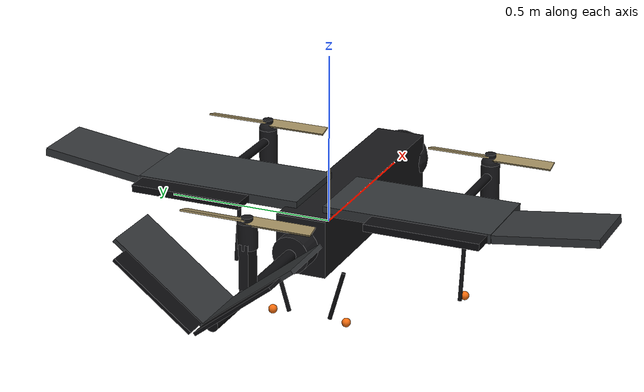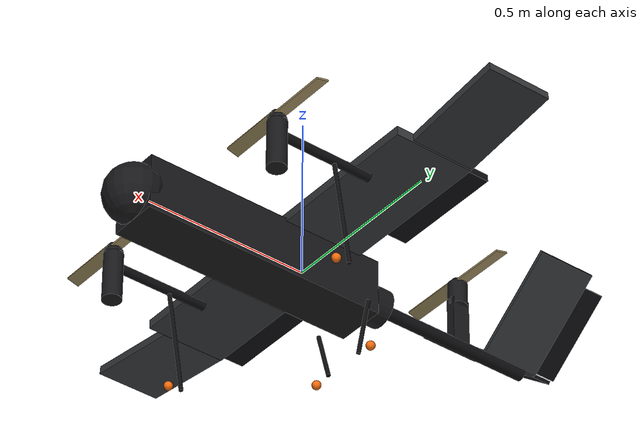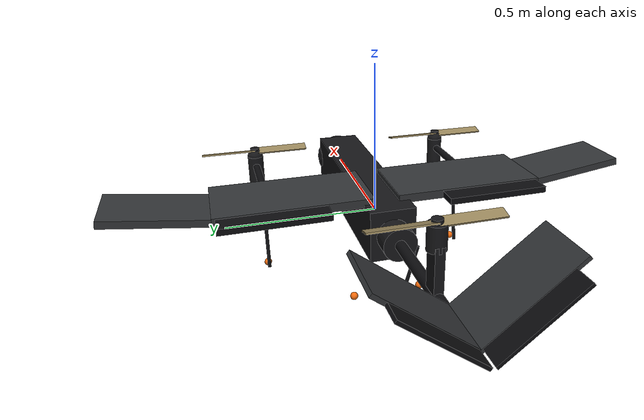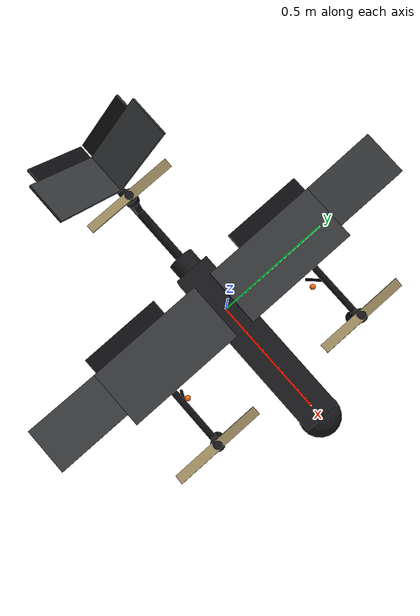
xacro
<?xml version="1.0"?>
<robot name="vtol_tiltrotor" xmlns:xacro="http://www.ros.org/wiki/xacro">

  <xacro:arg name="use_gazebo" default="true"/>
  <!-- "fortress" = ign-gazebo 6 / ROS 2 Humble, "harmonic" = gz-sim 8 / Jazzy -->
  <xacro:arg name="gz_flavor" default="fortress"/>

  <!-- ============================ PARAMETERS ============================ -->
  <!-- Fuselage pod: nose at x=+0.55, pod ends at x=-0.20 -->
  <xacro:property name="pod_len"    value="0.75"/>
  <xacro:property name="pod_w"      value="0.150"/>
  <xacro:property name="pod_h"      value="0.170"/>
  <xacro:property name="pod_x"      value="0.175"/>
  <xacro:property name="pod_mass"   value="2.60"/>     <!-- incl. battery + payload -->
  <xacro:property name="pod_cg_x"   value="0.0"/>      <!-- set below by trim -->

  <!-- Tail boom: from x=-0.20 back to x=-0.80 -->
  <xacro:property name="tb_r"       value="0.018"/>
  <xacro:property name="tb_fwd"     value="-0.20"/>
  <xacro:property name="tb_aft"     value="-0.76"/>
  <xacro:property name="tb_len"     value="${tb_fwd - tb_aft}"/>
  <xacro:property name="tb_xc"      value="${(tb_fwd + tb_aft)/2.0}"/>
  <xacro:property name="tb_mass"    value="0.15"/>

  <!-- Wing: 1.70 m span, tapered, raked tips -->
  <xacro:property name="span"       value="1.70"/>
  <xacro:property name="root_chord" value="0.265"/>
  <xacro:property name="tip_chord"  value="0.170"/>
  <xacro:property name="wing_t"     value="0.028"/>
  <xacro:property name="wing_x"     value="-0.010"/>
  <xacro:property name="wing_z"     value="0.090"/>
  <xacro:property name="panel_span" value="0.50"/>     <!-- inboard panel, per side -->
  <xacro:property name="tip_span"   value="0.31"/>     <!-- outboard raked panel -->
  <xacro:property name="panel_ac_y" value="0.29"/>     <!-- inboard panel centroid -->
  <xacro:property name="dihedral"   value="0.13"/>     <!-- tip panel, ~7.5 deg -->
  <xacro:property name="panel_mass" value="0.36"/>
  <xacro:property name="tip_mass"   value="0.14"/>
  <xacro:property name="panel_area" value="0.123"/>    <!-- 0.246 chord x 0.50 -->
  <xacro:property name="tip_area"   value="0.058"/>

  <!-- Ailerons: on the outboard trailing edge of the inboard panel -->
  <xacro:property name="ail_chord"  value="0.065"/>
  <xacro:property name="ail_span"   value="0.34"/>
  <xacro:property name="ail_mass"   value="0.025"/>

  <!-- Front rotor booms -->
  <xacro:property name="boom_y"     value="0.360"/>
  <xacro:property name="boom_r"     value="0.013"/>
  <xacro:property name="tilt_x"     value="0.360"/>    <!-- tilt axis / rotor station -->
  <xacro:property name="boom_aft_x" value="0.060"/>    <!-- boom root, inside the wing -->
  <xacro:property name="boom_len"   value="${tilt_x - boom_aft_x}"/>
  <xacro:property name="boom_xc"    value="${(tilt_x + boom_aft_x)/2.0}"/>
  <xacro:property name="boom_z"     value="0.070"/>
  <xacro:property name="fboom_mass" value="0.10"/>

  <!-- V-tail -->
  <xacro:property name="vt_x"       value="-0.720"/>
  <xacro:property name="vt_z"       value="0.020"/>
  <xacro:property name="vt_span"    value="0.320"/>
  <xacro:property name="vt_chord"   value="0.180"/>
  <xacro:property name="vt_t"       value="0.012"/>
  <xacro:property name="vt_dihed"   value="0.663"/>    <!-- 38 deg -->
  <xacro:property name="vt_mass"    value="0.09"/>
  <xacro:property name="vt_area"    value="0.0576"/>
  <xacro:property name="rv_chord"   value="0.062"/>
  <xacro:property name="rv_mass"    value="0.03"/>

  <!-- Propulsion -->
  <xacro:property name="nac_len"    value="0.150"/>
  <xacro:property name="nac_r"      value="0.028"/>
  <xacro:property name="nac_mass"   value="0.30"/>
  <xacro:property name="prop_r"     value="0.190"/>    <!-- 15 in -->
  <xacro:property name="prop_t"     value="0.008"/>
  <xacro:property name="prop_mass"  value="0.025"/>
  <xacro:property name="rear_x"     value="-0.540"/>
  <xacro:property name="pylon_h"    value="0.150"/>
  <xacro:property name="pylon_mass" value="0.16"/>
  <xacro:property name="rseat_mass" value="0.22"/>

  <xacro:property name="tilt_min"   value="-0.17"/>    <!-- slight aft tilt allowed -->
  <xacro:property name="tilt_max"   value="1.5708"/>
  <xacro:property name="ytilt_max"  value="0.524"/>    <!-- rear rotor +-30 deg -->

  <!-- Landing skids -->
  <xacro:property name="skid_f_drop" value="0.310"/>
  <xacro:property name="skid_a_drop" value="0.155"/>

  <!-- ============================ MATERIALS ============================ -->
  <material name="matte_black"><color rgba="0.09 0.09 0.10 1.0"/></material>
  <material name="dark_grey">  <color rgba="0.20 0.21 0.22 1.0"/></material>
  <material name="carbon">     <color rgba="0.05 0.05 0.06 1.0"/></material>
  <material name="prop_tan">   <color rgba="0.60 0.53 0.36 1.0"/></material>
  <material name="hi_vis">     <color rgba="0.95 0.42 0.05 1.0"/></material>

  <!-- ========================= INERTIA MACROS ========================== -->
  <xacro:macro name="box_inertial" params="m x y z *origin">
    <inertial>
      <xacro:insert_block name="origin"/>
      <mass value="${m}"/>
      <inertia ixx="${m*(y*y+z*z)/12.0}" ixy="0.0" ixz="0.0"
               iyy="${m*(x*x+z*z)/12.0}" iyz="0.0"
               izz="${m*(x*x+y*y)/12.0}"/>
    </inertial>
  </xacro:macro>

  <xacro:macro name="cyl_inertial" params="m r l *origin">
    <inertial>
      <xacro:insert_block name="origin"/>
      <mass value="${m}"/>
      <inertia ixx="${m*(3*r*r+l*l)/12.0}" ixy="0.0" ixz="0.0"
               iyy="${m*(3*r*r+l*l)/12.0}" iyz="0.0"
               izz="${m*r*r/2.0}"/>
    </inertial>
  </xacro:macro>

  <xacro:macro name="disc_inertial" params="m r">
    <inertial>
      <mass value="${m}"/>
      <inertia ixx="${m*r*r/4.0}" ixy="0" ixz="0"
               iyy="${m*r*r/4.0}" iyz="0" izz="${m*r*r/2.0}"/>
    </inertial>
  </xacro:macro>

  <!-- Two-blade propeller: bar-shaped blades with real pitch, hub, and a
       full-disc collision (standard practice - keeps the sim conservative). -->
  <xacro:macro name="prop_visual" params="pitch:=0.26">
    <visual>
      <origin xyz="0 ${prop_r/2.0} 0" rpy="0 ${pitch} 0"/>
      <geometry><box size="0.038 ${prop_r} 0.005"/></geometry>
      <material name="prop_tan"/>
    </visual>
    <visual>
      <origin xyz="0 ${-prop_r/2.0} 0" rpy="0 ${-pitch} 0"/>
      <geometry><box size="0.038 ${prop_r} 0.005"/></geometry>
      <material name="prop_tan"/>
    </visual>
    <visual>
      <geometry><cylinder radius="0.016" length="0.022"/></geometry>
      <material name="matte_black"/>
    </visual>
    <collision>
      <geometry><cylinder radius="${prop_r}" length="${prop_t}"/></geometry>
    </collision>
  </xacro:macro>

  <!-- ========================= FUSELAGE + TAIL BOOM ===================== -->
  <link name="base_link">
    <!-- main pod -->
    <visual>
      <origin xyz="${pod_x} 0 0"/>
      <geometry><box size="${pod_len} ${pod_w} ${pod_h}"/></geometry>
      <material name="matte_black"/>
    </visual>
    <!-- rounded nose -->
    <visual>
      <origin xyz="${pod_x + pod_len/2.0} 0 0"/>
      <geometry><sphere radius="${pod_h/2.0}"/></geometry>
      <material name="matte_black"/>
    </visual>
    <!-- aft fairing blending pod into the boom -->
    <visual>
      <origin xyz="${tb_fwd - 0.02} 0 0" rpy="0 1.5708 0"/>
      <geometry><cylinder radius="0.055" length="0.10"/></geometry>
      <material name="matte_black"/>
    </visual>
    <!-- tail boom -->
    <visual>
      <origin xyz="${tb_xc} 0 0" rpy="0 1.5708 0"/>
      <geometry><cylinder radius="${tb_r}" length="${tb_len}"/></geometry>
      <material name="carbon"/>
    </visual>

    <collision>
      <origin xyz="${pod_x} 0 0"/>
      <geometry><box size="${pod_len} ${pod_w} ${pod_h}"/></geometry>
    </collision>
    <collision>
      <origin xyz="${tb_xc} 0 0" rpy="0 1.5708 0"/>
      <geometry><cylinder radius="${tb_r}" length="${tb_len}"/></geometry>
    </collision>

    <!-- Pod mass. The x offset is chosen so the WHOLE-AIRFRAME CoM lands on
         x=0; it represents battery + avionics packed forward in the pod. -->
    <xacro:box_inertial m="${pod_mass}" x="${pod_len}" y="${pod_w}" z="${pod_h}">
      <origin xyz="0.0759 0 0"/>
    </xacro:box_inertial>
  </link>

  <link name="tail_boom_mass">
    <xacro:cyl_inertial m="${tb_mass}" r="${tb_r}" l="${tb_len}">
      <origin xyz="0 0 0" rpy="0 1.5708 0"/>
    </xacro:cyl_inertial>
  </link>
  <joint name="tail_boom_joint" type="fixed">
    <parent link="base_link"/><child link="tail_boom_mass"/>
    <origin xyz="${tb_xc} 0 0"/>
  </joint>

  <!-- ================================ IMU =============================== -->
  <link name="imu_link">
    <inertial>
      <mass value="0.001"/>
      <inertia ixx="1e-7" ixy="0" ixz="0" iyy="1e-7" iyz="0" izz="1e-7"/>
    </inertial>
  </link>
  <joint name="imu_joint" type="fixed">
    <parent link="base_link"/><child link="imu_link"/>
    <origin xyz="0.10 0 0.01"/>
  </joint>

  <!-- ========================= DEPTH CAMERA + GPS ======================= -->
  <link name="depth_camera_link"/>
  <joint name="depth_camera_joint" type="fixed">
    <parent link="base_link"/><child link="depth_camera_link"/>
    <origin xyz="0.64 0 0" rpy="0 0 0"/>   <!-- justo delante de la esfera de la nariz -->
  </joint>

  <link name="gps_link"/>
  <joint name="gps_joint" type="fixed">
    <parent link="base_link"/><child link="gps_link"/>
    <origin xyz="0.20 0 0.10"/>            <!-- sobre el pod -->
  </joint>

  <!-- ============================== WING =============================== -->
  <xacro:macro name="wing_panel" params="side reflect">
    <link name="wing_${side}">
      <visual>
        <origin xyz="-0.004 0 0"/>
        <geometry><box size="0.246 ${panel_span} ${wing_t}"/></geometry>
        <material name="dark_grey"/>
      </visual>
      <collision>
        <origin xyz="-0.004 0 0"/>
        <geometry><box size="0.246 ${panel_span} ${wing_t}"/></geometry>
      </collision>
      <xacro:box_inertial m="${panel_mass}" x="0.246" y="${panel_span}" z="${wing_t}">
        <origin xyz="0 0 0"/>
      </xacro:box_inertial>
    </link>
    <joint name="wing_${side}_joint" type="fixed">
      <parent link="base_link"/><child link="wing_${side}"/>
      <origin xyz="${wing_x} ${reflect*panel_ac_y} ${wing_z}"/>
    </joint>

    <!-- raked outboard tip panel -->
    <link name="tip_${side}">
      <visual>
        <origin xyz="-0.01 0 0"/>
        <geometry><box size="0.195 ${tip_span} ${wing_t*0.85}"/></geometry>
        <material name="dark_grey"/>
      </visual>
      <xacro:box_inertial m="${tip_mass}" x="0.195" y="${tip_span}" z="${wing_t}">
        <origin xyz="-0.01 0 0"/>
      </xacro:box_inertial>
    </link>
    <joint name="tip_${side}_joint" type="fixed">
      <parent link="wing_${side}"/><child link="tip_${side}"/>
      <origin xyz="-0.020 ${reflect*(panel_span/2.0 + tip_span/2.0)} 0.020"
              rpy="${reflect*dihedral} 0 0"/>
    </joint>

    <!-- aileron on the outboard trailing edge of the inboard panel -->
    <link name="aileron_${side}">
      <visual>
        <origin xyz="${-ail_chord/2.0} 0 0"/>
        <geometry><box size="${ail_chord} ${ail_span} ${wing_t*0.75}"/></geometry>
        <material name="carbon"/>
      </visual>
      <xacro:box_inertial m="${ail_mass}" x="${ail_chord}" y="${ail_span}" z="${wing_t}">
        <origin xyz="${-ail_chord/2.0} 0 0"/>
      </xacro:box_inertial>
    </link>
    <joint name="aileron_${side}_joint" type="revolute">
      <parent link="wing_${side}"/><child link="aileron_${side}"/>
      <origin xyz="-0.127 ${reflect*0.07} 0"/>
      <axis xyz="0 1 0"/>
      <limit lower="-0.44" upper="0.44" effort="6.0" velocity="10.0"/>
      <dynamics damping="0.05" friction="0.01"/>
    </joint>
  </xacro:macro>

  <xacro:wing_panel side="left"  reflect="1"/>
  <xacro:wing_panel side="right" reflect="-1"/>

  <!-- ======================== V-TAIL (RUDDERVATORS) ===================== -->
  <xacro:macro name="vtail" params="side reflect">
    <link name="vtail_${side}">
      <visual>
        <origin xyz="0 ${reflect*vt_span/2.0} 0"/>
        <geometry><box size="${vt_chord} ${vt_span} ${vt_t}"/></geometry>
        <material name="dark_grey"/>
      </visual>
      <collision>
        <origin xyz="0 ${reflect*vt_span/2.0} 0"/>
        <geometry><box size="${vt_chord} ${vt_span} ${vt_t}"/></geometry>
      </collision>
      <xacro:box_inertial m="${vt_mass}" x="${vt_chord}" y="${vt_span}" z="${vt_t}">
        <origin xyz="0 ${reflect*vt_span/2.0} 0"/>
      </xacro:box_inertial>
    </link>
    <joint name="vtail_${side}_joint" type="fixed">
      <parent link="base_link"/><child link="vtail_${side}"/>
      <origin xyz="${vt_x} 0 ${vt_z}" rpy="${reflect*vt_dihed} 0 0"/>
    </joint>

    <link name="ruddervator_${side}">
      <visual>
        <origin xyz="${-rv_chord/2.0} ${reflect*vt_span*0.45} 0"/>
        <geometry><box size="${rv_chord} ${vt_span*0.85} ${vt_t*0.8}"/></geometry>
        <material name="carbon"/>
      </visual>
      <xacro:box_inertial m="${rv_mass}" x="${rv_chord}" y="${vt_span*0.85}" z="${vt_t}">
        <origin xyz="${-rv_chord/2.0} ${reflect*vt_span*0.45} 0"/>
      </xacro:box_inertial>
    </link>
    <joint name="ruddervator_${side}_joint" type="revolute">
      <parent link="vtail_${side}"/><child link="ruddervator_${side}"/>
      <origin xyz="${-vt_chord/2.0} 0 0"/>
      <axis xyz="0 1 0"/>
      <limit lower="-0.52" upper="0.52" effort="6.0" velocity="10.0"/>
      <dynamics damping="0.05" friction="0.01"/>
    </joint>
  </xacro:macro>

  <xacro:vtail side="left"  reflect="1"/>
  <xacro:vtail side="right" reflect="-1"/>

  <!-- ==================== FRONT BOOMS + TILTING ROTORS ================== -->
  <xacro:macro name="front_unit" params="side reflect">
    <link name="fboom_${side}">
      <visual>
        <origin xyz="0 0 0" rpy="0 1.5708 0"/>
        <geometry><cylinder radius="${boom_r}" length="${boom_len}"/></geometry>
        <material name="carbon"/>
      </visual>
      <collision>
        <origin xyz="0 0 0" rpy="0 1.5708 0"/>
        <geometry><cylinder radius="${boom_r}" length="${boom_len}"/></geometry>
      </collision>
      <xacro:cyl_inertial m="${fboom_mass}" r="${boom_r}" l="${boom_len}">
        <origin xyz="0 0 0" rpy="0 1.5708 0"/>
      </xacro:cyl_inertial>
    </link>
    <joint name="fboom_${side}_joint" type="fixed">
      <parent link="base_link"/><child link="fboom_${side}"/>
      <origin xyz="${boom_xc} ${reflect*boom_y} ${boom_z}"/>
    </joint>

    <!-- tilt nacelle: 0 rad = rotor axis +z (hover), pi/2 = +x (cruise) -->
    <link name="nacelle_${side}">
      <visual>
        <origin xyz="0 0 ${-nac_len/2.0 + 0.035}"/>
        <geometry><cylinder radius="${nac_r}" length="${nac_len}"/></geometry>
        <material name="matte_black"/>
      </visual>
      <visual>
        <origin xyz="0 0 0.035"/>
        <geometry><sphere radius="${nac_r}"/></geometry>
        <material name="matte_black"/>
      </visual>
      <collision>
        <origin xyz="0 0 ${-nac_len/2.0 + 0.035}"/>
        <geometry><cylinder radius="${nac_r}" length="${nac_len}"/></geometry>
      </collision>
      <xacro:cyl_inertial m="${nac_mass}" r="${nac_r}" l="${nac_len}">
        <origin xyz="0 0 ${-nac_len/2.0 + 0.035}"/>
      </xacro:cyl_inertial>
    </link>
    <joint name="tilt_${side}_joint" type="revolute">
      <parent link="fboom_${side}"/><child link="nacelle_${side}"/>
      <origin xyz="${boom_len/2.0} 0 0"/>
      <axis xyz="0 1 0"/>
      <limit lower="${tilt_min}" upper="${tilt_max}" effort="8.0" velocity="3.0"/>
      <dynamics damping="0.10" friction="0.02"/>
    </joint>

    <link name="rotor_${side}">
      <xacro:prop_visual/>
      <xacro:disc_inertial m="${prop_mass}" r="${prop_r}"/>
    </link>
    <joint name="rotor_${side}_joint" type="continuous">
      <parent link="nacelle_${side}"/><child link="rotor_${side}"/>
      <origin xyz="0 0 0.055"/>
      <axis xyz="0 0 1"/>
    </joint>

    <!-- forward landing skid hanging off the boom -->
    <link name="skid_f_${side}">
      <visual>
        <origin xyz="0 0 ${-skid_f_drop/2.0}" rpy="0 0.16 0"/>
        <geometry><cylinder radius="0.006" length="${skid_f_drop}"/></geometry>
        <material name="carbon"/>
      </visual>
      <visual>
        <origin xyz="0.017 0 ${-skid_f_drop}"/>
        <geometry><sphere radius="0.013"/></geometry>
        <material name="hi_vis"/>
      </visual>
      <collision>
        <origin xyz="0.017 0 ${-skid_f_drop}"/>
        <geometry><sphere radius="0.013"/></geometry>
      </collision>
      <xacro:cyl_inertial m="0.05" r="0.006" l="${skid_f_drop}">
        <origin xyz="0 0 ${-skid_f_drop/2.0}"/>
      </xacro:cyl_inertial>
    </link>
    <joint name="skid_f_${side}_joint" type="fixed">
      <parent link="fboom_${side}"/><child link="skid_f_${side}"/>
      <origin xyz="-0.06 0 0"/>
    </joint>

    <!-- aft landing skid off the pod -->
    <link name="skid_a_${side}">
      <visual>
        <origin xyz="0 ${reflect*0.03} ${-skid_a_drop/2.0}" rpy="${-reflect*0.28} 0 0"/>
        <geometry><cylinder radius="0.006" length="${skid_a_drop}"/></geometry>
        <material name="carbon"/>
      </visual>
      <visual>
        <origin xyz="0 ${reflect*0.06} ${-skid_a_drop}"/>
        <geometry><sphere radius="0.013"/></geometry>
        <material name="hi_vis"/>
      </visual>
      <collision>
        <origin xyz="0 ${reflect*0.06} ${-skid_a_drop}"/>
        <geometry><sphere radius="0.013"/></geometry>
      </collision>
      <xacro:cyl_inertial m="0.05" r="0.006" l="${skid_a_drop}">
        <origin xyz="0 ${reflect*0.03} ${-skid_a_drop/2.0}"/>
      </xacro:cyl_inertial>
    </link>
    <joint name="skid_a_${side}_joint" type="fixed">
      <parent link="base_link"/><child link="skid_a_${side}"/>
      <origin xyz="-0.14 ${reflect*0.055} ${-pod_h/2.0}"/>
    </joint>
  </xacro:macro>

  <xacro:front_unit side="left"  reflect="1"/>
  <xacro:front_unit side="right" reflect="-1"/>

  <!-- ==================== REAR ROTOR (YAW-TILTING SEAT) ================= -->
  <link name="rear_pylon">
    <visual>
      <origin xyz="0 0 ${pylon_h/2.0}"/>
      <geometry><box size="0.055 0.028 ${pylon_h}"/></geometry>
      <material name="matte_black"/>
    </visual>
    <collision>
      <origin xyz="0 0 ${pylon_h/2.0}"/>
      <geometry><box size="0.055 0.028 ${pylon_h}"/></geometry>
    </collision>
    <xacro:box_inertial m="${pylon_mass}" x="0.055" y="0.028" z="${pylon_h}">
      <origin xyz="0 0 ${pylon_h/2.0}"/>
    </xacro:box_inertial>
  </link>
  <joint name="rear_pylon_joint" type="fixed">
    <parent link="base_link"/><child link="rear_pylon"/>
    <origin xyz="${rear_x} 0 0"/>
  </joint>

  <!-- Tilt seat: rotates about the ROLL axis to vector thrust sideways.
       This is the yaw actuator in hover, tricopter-style. -->
  <link name="rear_seat">
    <visual>
      <origin xyz="0 0 0.02"/>
      <geometry><cylinder radius="${nac_r}" length="0.075"/></geometry>
      <material name="matte_black"/>
    </visual>
    <collision>
      <origin xyz="0 0 0.02"/>
      <geometry><cylinder radius="${nac_r}" length="0.075"/></geometry>
    </collision>
    <xacro:cyl_inertial m="${rseat_mass}" r="${nac_r}" l="0.075">
      <origin xyz="0 0 0.02"/>
    </xacro:cyl_inertial>
  </link>
  <joint name="rear_tilt_joint" type="revolute">
    <parent link="rear_pylon"/><child link="rear_seat"/>
    <origin xyz="0 0 ${pylon_h}"/>
    <axis xyz="1 0 0"/>
    <limit lower="${-ytilt_max}" upper="${ytilt_max}" effort="6.0" velocity="6.0"/>
    <dynamics damping="0.05" friction="0.01"/>
  </joint>

  <link name="rotor_rear">
    <xacro:prop_visual/>
    <xacro:disc_inertial m="${prop_mass}" r="${prop_r}"/>
  </link>
  <joint name="rotor_rear_joint" type="continuous">
    <parent link="rear_seat"/><child link="rotor_rear"/>
    <origin xyz="0 0 0.060"/>
    <axis xyz="0 0 1"/>
  </joint>

  <!-- ============================== GAZEBO ============================= -->
  <xacro:if value="$(arg use_gazebo)">
    <xacro:include filename="$(find vtol_tiltrotor_description)/urdf/gazebo_$(arg gz_flavor).xacro"/>
  </xacro:if>

</robot>

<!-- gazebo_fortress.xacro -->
<robot xmlns:xacro="http://www.ros.org/wiki/xacro">

  <xacro:property name="ns"          value="vtol"/>
  <xacro:property name="k_thrust"    value="1.6e-05"/>
  <xacro:property name="k_moment"    value="0.016"/>
  <xacro:property name="w_max"       value="1500"/>      <!-- rad/s -->
  <xacro:property name="air_density" value="1.2041"/>

  <!-- ============================== MOTORS ============================== -->
  <xacro:macro name="motor" params="joint link direction number">
    <gazebo>
      <plugin filename="ignition-gazebo-multicopter-motor-model-system"
              name="ignition::gazebo::systems::MulticopterMotorModel">
        <robotNamespace>${ns}</robotNamespace>
        <jointName>${joint}</jointName>
        <linkName>${link}</linkName>
        <turningDirection>${direction}</turningDirection>
        <timeConstantUp>0.0125</timeConstantUp>
        <timeConstantDown>0.025</timeConstantDown>
        <maxRotVelocity>${w_max}</maxRotVelocity>
        <motorConstant>${k_thrust}</motorConstant>
        <momentConstant>${k_moment}</momentConstant>
        <commandSubTopic>command/motor_speed</commandSubTopic>
        <motorNumber>${number}</motorNumber>
        <rotorDragCoefficient>8.06428e-05</rotorDragCoefficient>
        <rollingMomentCoefficient>1.0e-06</rollingMomentCoefficient>
        <motorType>velocity</motorType>
        <rotorVelocitySlowdownSim>10</rotorVelocitySlowdownSim>
      </plugin>
    </gazebo>
  </xacro:macro>

  <xacro:motor joint="rotor_left_joint"  link="rotor_left"  direction="ccw" number="0"/>
  <xacro:motor joint="rotor_right_joint" link="rotor_right" direction="cw"  number="1"/>
  <xacro:motor joint="rotor_rear_joint"  link="rotor_rear"  direction="ccw" number="2"/>

  <!-- =========================== SERVO JOINTS =========================== -->
  <xacro:macro name="pos_ctrl" params="joint topic p:=30.0 vmax:=8.0">
    <gazebo>
      <plugin filename="ignition-gazebo-joint-position-controller-system"
              name="ignition::gazebo::systems::JointPositionController">
        <joint_name>${joint}</joint_name>
        <topic>/${ns}/${topic}</topic>
        <use_velocity_commands>true</use_velocity_commands>
        <p_gain>${p}</p_gain>
        <i_gain>0.0</i_gain>
        <d_gain>0.0</d_gain>
        <cmd_max>${vmax}</cmd_max>
        <cmd_min>${-vmax}</cmd_min>
      </plugin>
    </gazebo>
  </xacro:macro>

  <!-- transition servos: 0 = hover, pi/2 = cruise -->
  <xacro:pos_ctrl joint="tilt_left_joint"  topic="tilt_left/cmd"  p="12.0" vmax="3.0"/>
  <xacro:pos_ctrl joint="tilt_right_joint" topic="tilt_right/cmd" p="12.0" vmax="3.0"/>
  <!-- YAW servo: the tricopter-style tail tilt, not a transition servo -->
  <xacro:pos_ctrl joint="rear_tilt_joint"  topic="rear_tilt/cmd"  p="25.0" vmax="6.0"/>
  <!-- aerodynamic surfaces -->
  <xacro:pos_ctrl joint="aileron_left_joint"      topic="aileron_left/cmd"      vmax="10.0"/>
  <xacro:pos_ctrl joint="aileron_right_joint"     topic="aileron_right/cmd"     vmax="10.0"/>
  <xacro:pos_ctrl joint="ruddervator_left_joint"  topic="ruddervator_left/cmd"  vmax="10.0"/>
  <xacro:pos_ctrl joint="ruddervator_right_joint" topic="ruddervator_right/cmd" vmax="10.0"/>

  <!-- ============================ AERODYNAMICS ========================== -->
  <xacro:macro name="liftdrag" params="name link:=base_link area cp upward:='0 0 1'
                                       cla:=4.75 cda:=1.0 a0:=0.05
                                       alpha_stall:=0.30 cla_stall:=-3.85
                                       cda_stall:=-0.9
                                       ctrl_joint:=none rad_to_cl:=0.0">
    <gazebo>
      <plugin filename="ignition-gazebo-lift-drag-system"
              name="ignition::gazebo::systems::LiftDrag">
        <link_name>${link}</link_name>
        <air_density>${air_density}</air_density>
        <area>${area}</area>
        <a0>${a0}</a0>
        <cla>${cla}</cla>
        <cda>${cda}</cda>
        <alpha_stall>${alpha_stall}</alpha_stall>
        <cla_stall>${cla_stall}</cla_stall>
        <cda_stall>${cda_stall}</cda_stall>
        <cp>${cp}</cp>
        <forward>1 0 0</forward>
        <upward>${upward}</upward>
        <xacro:unless value="${ctrl_joint == 'none'}">
          <control_joint_name>${ctrl_joint}</control_joint_name>
          <control_joint_rad_to_cl>${rad_to_cl}</control_joint_rad_to_cl>
        </xacro:unless>
      </plugin>
    </gazebo>
  </xacro:macro>

  <!-- Panel frames in base_link, mirroring the joint chain in the URDF. -->
  <xacro:property name="tip_x"   value="${wing_x - 0.020 - 0.010}"/>
  <xacro:property name="tip_y"   value="${panel_ac_y + panel_span/2.0 + tip_span/2.0}"/>
  <xacro:property name="tip_z"   value="${wing_z + 0.020}"/>
  <xacro:property name="vt_cp_y" value="${0.16*cos(vt_dihed)}"/>
  <xacro:property name="vt_cp_z" value="${vt_z + 0.16*sin(vt_dihed)}"/>

  <!-- inboard wing panels, carrying the ailerons -->
  <xacro:liftdrag name="wing_left"  area="${panel_area}"
                  cp="${wing_x} ${panel_ac_y} ${wing_z}"
                  ctrl_joint="aileron_left_joint"  rad_to_cl="-2.0"/>
  <xacro:liftdrag name="wing_right" area="${panel_area}"
                  cp="${wing_x} ${-panel_ac_y} ${wing_z}"
                  ctrl_joint="aileron_right_joint" rad_to_cl="-2.0"/>
  <!-- raked outboard tips, dihedral ${dihedral} rad, so their normal is tilted -->
  <xacro:liftdrag name="tip_left"  area="${tip_area}"
                  cp="${tip_x} ${tip_y} ${tip_z}"
                  upward="0 ${-sin(dihedral)} ${cos(dihedral)}"/>
  <xacro:liftdrag name="tip_right" area="${tip_area}"
                  cp="${tip_x} ${-tip_y} ${tip_z}"
                  upward="0 ${sin(dihedral)} ${cos(dihedral)}"/>
  <!-- V-tail panels: local +z is the panel normal, dihedral ${vt_dihed} rad -->
  <xacro:liftdrag name="vtail_left"  area="${vt_area}" cla="3.6" cda="0.9" a0="0.0"
                  cp="${vt_x} ${vt_cp_y} ${vt_cp_z}"
                  upward="0 ${-sin(vt_dihed)} ${cos(vt_dihed)}"
                  ctrl_joint="ruddervator_left_joint"  rad_to_cl="-3.0"/>
  <xacro:liftdrag name="vtail_right" area="${vt_area}" cla="3.6" cda="0.9" a0="0.0"
                  cp="${vt_x} ${-vt_cp_y} ${vt_cp_z}"
                  upward="0 ${sin(vt_dihed)} ${cos(vt_dihed)}"
                  ctrl_joint="ruddervator_right_joint" rad_to_cl="-3.0"/>

  <!-- ================================ IMU =============================== -->
  <gazebo reference="imu_link">
    <sensor name="imu_sensor" type="imu">
      <always_on>1</always_on>
      <update_rate>250</update_rate>
      <topic>/${ns}/imu</topic>
      <ignition_frame_id>imu_link</ignition_frame_id>
    </sensor>
  </gazebo>

  <gazebo>
    <plugin filename="ignition-gazebo-imu-system" name="ignition::gazebo::systems::Imu"/>
    <plugin filename="ignition-gazebo-pose-publisher-system"
            name="ignition::gazebo::systems::PosePublisher">
      <publish_link_pose>false</publish_link_pose>
      <publish_model_pose>true</publish_model_pose>
      <use_pose_vector_msg>true</use_pose_vector_msg>
      <update_frequency>50</update_frequency>
    </plugin>
    <plugin filename="ignition-gazebo-joint-state-publisher-system"
            name="ignition::gazebo::systems::JointStatePublisher"/>
    <plugin filename="ignition-gazebo-odometry-publisher-system"
            name="ignition::gazebo::systems::OdometryPublisher">
      <dimensions>3</dimensions>
      <odom_topic>/${ns}/odom</odom_topic>
      <odom_frame>world</odom_frame>
      <robot_base_frame>base_link</robot_base_frame>
      <odom_publish_frequency>100</odom_publish_frequency>
      <!-- Bridged straight to /tf, which is what lets RViz show the aircraft
           actually moving through the world instead of sitting at the origin. -->
      <tf_topic>/${ns}/tf</tf_topic>
    </plugin>
  </gazebo>

  <!-- ======================== DEPTH CAMERA + GPS ======================== -->
  <gazebo reference="depth_camera_link">
    <sensor name="depth_camera" type="depth_camera">
      <always_on>1</always_on>
      <update_rate>10</update_rate>
      <topic>/${ns}/depth_camera</topic>
      <ignition_frame_id>depth_camera_link</ignition_frame_id>
      <camera>
        <horizontal_fov>1.047</horizontal_fov>
        <image>
          <width>320</width>
          <height>240</height>
          <format>R_FLOAT32</format>
        </image>
        <clip><near>0.2</near><far>30</far></clip>
      </camera>
    </sensor>
  </gazebo>

  <gazebo reference="gps_link">
    <sensor name="gps" type="navsat">
      <always_on>1</always_on>
      <update_rate>5</update_rate>
      <topic>/${ns}/navsat</topic>
      <ignition_frame_id>gps_link</ignition_frame_id>
    </sensor>
  </gazebo>

  <!-- ============================= MATERIALS ============================ -->
  <xacro:macro name="gz_color" params="link r g b">
    <gazebo reference="${link}">
      <visual>
        <material>
          <ambient>${r} ${g} ${b} 1</ambient>
          <diffuse>${r} ${g} ${b} 1</diffuse>
          <specular>0.04 0.04 0.04 1</specular>
        </material>
      </visual>
    </gazebo>
  </xacro:macro>

  <xacro:gz_color link="base_link"    r="0.09" g="0.09" b="0.10"/>
  <xacro:gz_color link="wing_left"    r="0.20" g="0.21" b="0.22"/>
  <xacro:gz_color link="wing_right"   r="0.20" g="0.21" b="0.22"/>
  <xacro:gz_color link="tip_left"     r="0.20" g="0.21" b="0.22"/>
  <xacro:gz_color link="tip_right"    r="0.20" g="0.21" b="0.22"/>
  <xacro:gz_color link="vtail_left"   r="0.20" g="0.21" b="0.22"/>
  <xacro:gz_color link="vtail_right"  r="0.20" g="0.21" b="0.22"/>
  <xacro:gz_color link="rotor_left"   r="0.60" g="0.53" b="0.36"/>
  <xacro:gz_color link="rotor_right"  r="0.60" g="0.53" b="0.36"/>
  <xacro:gz_color link="rotor_rear"   r="0.60" g="0.53" b="0.36"/>

</robot>
